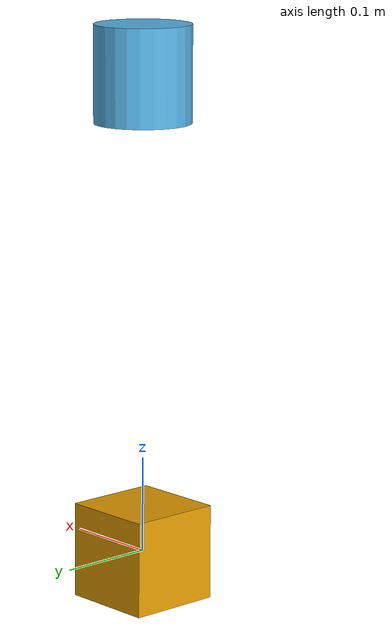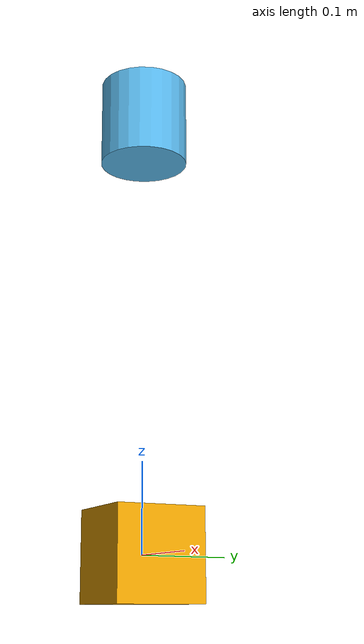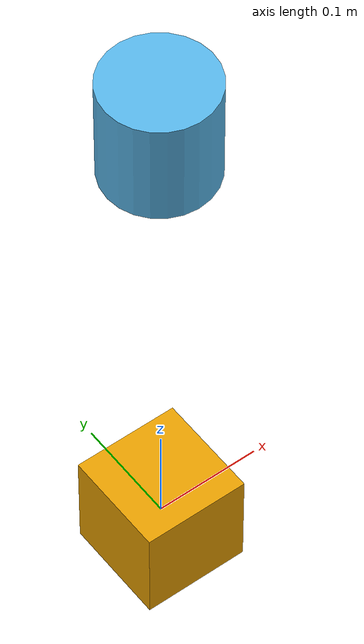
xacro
<?xml version="1.0"?>
<robot name="velodyne_lidar_robot" xmlns:xacro="http://www.ros.org/wiki/xacro">

  <!-- Define the base link of the robot -->
  <link name="base_link">
    <inertial>
      <mass value="1.0"/>
      <origin xyz="0 0 0" rpy="0 0 0"/>
      <inertia ixx="0.1" ixy="0.0" ixz="0.0" iyy="0.1" iyz="0.0" izz="0.1"/>
    </inertial>
    <visual>
      <origin xyz="0 0 0" rpy="0 0 0"/>
      <geometry>
        <box size="0.1 0.1 0.1"/>
      </geometry>
    </visual>
    <collision>
      <origin xyz="0 0 0" rpy="0 0 0"/>
      <geometry>
        <box size="0.1 0.1 0.1"/>
      </geometry>
    </collision>
  </link>

  <!-- Define the Velodyne LiDAR sensor -->
  <link name="velodyne_lidar">
    <inertial>
      <mass value="0.1"/>
      <origin xyz="0 0 0" rpy="0 0 0"/>
      <inertia ixx="0.01" ixy="0.0" ixz="0.0" iyy="0.01" iyz="0.0" izz="0.01"/>
    </inertial>
    <visual>
      <origin xyz="0 0 0" rpy="0 0 0"/>
      <geometry>
        <cylinder length="0.1" radius="0.05"/>
      </geometry>
    </visual>
    <collision>
      <origin xyz="0 0 0" rpy="0 0 0"/>
      <geometry>
        <cylinder length="0.1" radius="0.05"/>
      </geometry>
    </collision>
  </link>

  <!-- Joint to attach the Velodyne LiDAR to the base link -->
  <joint name="velodyne_joint" type="fixed">
    <parent link="base_link"/>
    <child link="velodyne_lidar"/>
    <origin xyz="0 0 0.5" rpy="0 0 0"/> <!-- Adjust position and orientation as needed -->
  </joint>

  <!-- Gazebo plugin for the Velodyne LiDAR -->
  <gazebo reference="velodyne_lidar">
    <sensor type="gpu_ray" name="velodyne_sensor">
      <pose>0 0 0 0 0 0</pose>
      <visualize>true</visualize>
      <update_rate>10</update_rate>
      <ray>
        <scan>
          <horizontal>
            <samples>720</samples> <!-- Number of samples per scan -->
            <resolution>1.0</resolution>
            <min_angle>-3.14159</min_angle> <!-- -180 degrees -->
            <max_angle>3.14159</max_angle> <!-- +180 degrees -->
          </horizontal>
          <vertical>
            <samples>16</samples> <!-- Number of vertical beams -->
            <resolution>1.0</resolution>
            <min_angle>-0.261799</min_angle> <!-- -15 degrees -->
            <max_angle>0.261799</max_angle> <!-- +15 degrees -->
          </vertical>
        </scan>
        <range>
          <min>0.1</min> <!-- Minimum range in meters -->
          <max>100.0</max> <!-- Maximum range in meters -->
          <resolution>0.01</resolution>
        </range>
        <noise>
          <type>gaussian</type>
          <mean>0.0</mean>
          <stddev>0.01</stddev>
        </noise>
      </ray>
      <plugin name="gazebo_ros_velodyne_lidar_controller" filename="libgazebo_ros_ray_sensor.so">
        <ros>
          <namespace>/</namespace>
          <remapping>~/out:=velodyne_points</remapping>
        </ros>
        <output_type>sensor_msgs/PointCloud2</output_type>
        <frame_name>velodyne_lidar</frame_name>
      </plugin>
    </sensor>
  </gazebo>

</robot>
